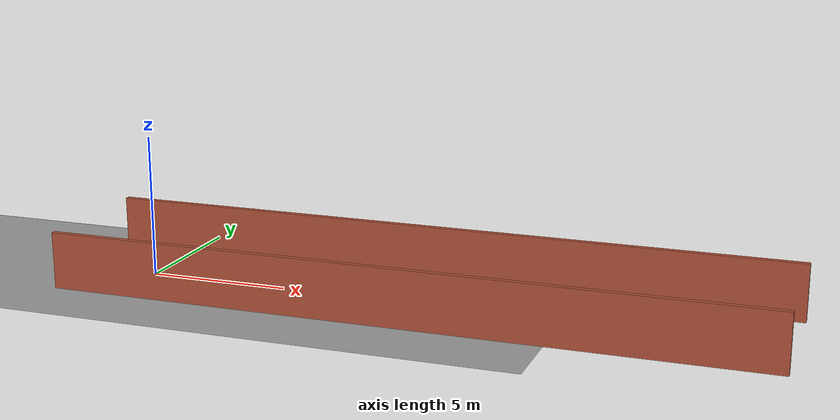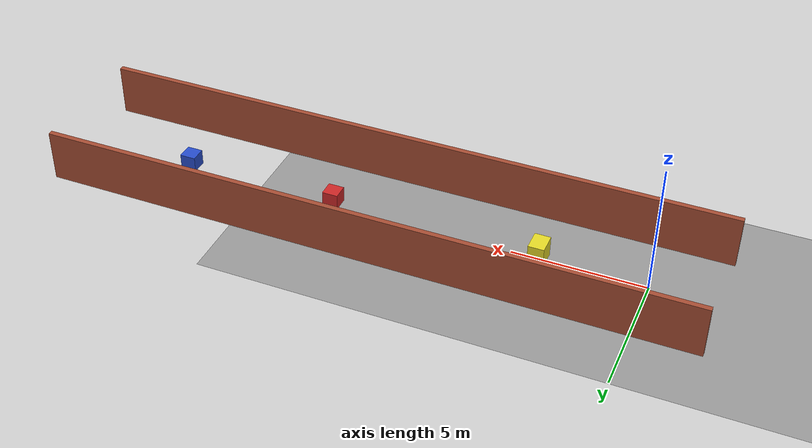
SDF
<?xml version="1.0" ?>
<sdf version="1.6">
  <world name="industrial_corridor">
    <include>
      <uri>model://sun</uri>
    </include>

    <plugin name="gazebo_ros_state" filename="libgazebo_ros_state.so">
      <ros><namespace>/gazebo</namespace></ros>
      <update_rate>50.0</update_rate>
    </plugin>

    <model name="floor">
      <static>true</static>
      <link name="link">
        <collision name="collision">
          <geometry><plane><normal>0 0 1</normal><size>30 10</size></plane></geometry>
        </collision>
        <visual name="visual">
          <geometry><plane><normal>0 0 1</normal><size>30 10</size></plane></geometry>
          <material>
            <script>
              <uri>file://media/materials/scripts/gazebo.material</uri>
              <name>Gazebo/Grey</name>
            </script>
          </material>
        </visual>
      </link>
    </model>

    <model name="wall_left">
      <pose>10.0 2.5 1.0 0 0 0</pose>
      <static>true</static>
      <link name="link">
        <collision name="collision"><geometry><box><size>25.0 0.2 2.0</size></box></geometry></collision>
        <visual name="visual">
          <geometry><box><size>25.0 0.2 2.0</size></box></geometry>
          <material>
            <script><uri>file://media/materials/scripts/gazebo.material</uri><name>Gazebo/Bricks</name></script>
          </material>
        </visual>
      </link>
    </model>

    <model name="wall_right">
      <pose>10.0 -2.5 1.0 0 0 0</pose>
      <static>true</static>
      <link name="link">
        <collision name="collision"><geometry><box><size>25.0 0.2 2.0</size></box></geometry></collision>
        <visual name="visual">
          <geometry><box><size>25.0 0.2 2.0</size></box></geometry>
          <material>
            <script><uri>file://media/materials/scripts/gazebo.material</uri><name>Gazebo/Bricks</name></script>
          </material>
        </visual>
      </link>
    </model>

    <model name='obstacle_safe'>
      <pose>4.0 0.0 0.4 0 0 0</pose>
      <static>1</static>
      <link name='link'>
        <collision name='collision'><geometry><box><size>0.6 0.8 0.8</size></box></geometry></collision>
        <visual name='visual'>
          <geometry><box><size>0.6 0.8 0.8</size></box></geometry>
          <material>
            <script><uri>file://media/materials/scripts/gazebo.material</uri><name>Gazebo/Yellow</name></script>
          </material>
        </visual>
      </link>
    </model>

    <model name='obstacle_danger'>
      <pose>12.0 0.0 0.4 0 0 0</pose>
      <static>0</static>
      <link name='link'>
        <inertial>
          <mass>1.0</mass>
          <inertia><ixx>0.1</ixx><ixy>0</ixy><ixz>0</ixz><iyy>0.1</iyy><iyz>0</iyz><izz>0.1</izz></inertia>
        </inertial>
        <collision name='collision'><geometry><box><size>0.6 0.6 0.6</size></box></geometry></collision>
        <visual name='visual'>
          <geometry><box><size>0.6 0.6 0.6</size></box></geometry>
          <material>
            <script><uri>file://media/materials/scripts/gazebo.material</uri><name>Gazebo/RedBright</name></script>
          </material>
        </visual>
      </link>
      <plugin name="object_controller" filename="libgazebo_ros_planar_move.so">
        <ros>
          <argument>cmd_vel:=actor_cmd_vel</argument>
          <argument>odom:=actor_odom</argument>
        </ros>
        <command_topic>actor_cmd_vel</command_topic>
        <odometry_topic>actor_odom</odometry_topic>
        <odometry_frame>odom</odometry_frame>
        <odometry_rate>20.0</odometry_rate>
        <robot_base_frame>link</robot_base_frame>
      </plugin>
    </model>

    <model name='obstacle_blue'>
      <pose>18.0 0.0 0.4 0 0 0</pose>
      <static>0</static>
      <link name='link'>
        <inertial><mass>1.0</mass><inertia><ixx>0.1</ixx><ixy>0</ixy><ixz>0</ixz><iyy>0.1</iyy><iyz>0</iyz><izz>0.1</izz></inertia></inertial>
        <collision name='collision'><geometry><box><size>0.6 0.6 0.6</size></box></geometry></collision>
        <visual name='visual'><geometry><box><size>0.6 0.6 0.6</size></box></geometry><material><script><uri>file://media/materials/scripts/gazebo.material</uri><name>Gazebo/Blue</name></script></material></visual>
      </link>
      <plugin name="blue_controller" filename="libgazebo_ros_planar_move.so">
        <ros><argument>cmd_vel:=blue_cmd_vel</argument><argument>odom:=blue_odom</argument></ros>
        <command_topic>blue_cmd_vel</command_topic><odometry_topic>blue_odom</odometry_topic>
        <odometry_frame>odom</odometry_frame><odometry_rate>20.0</odometry_rate><robot_base_frame>link</robot_base_frame>
      </plugin>
    </model>
  </world>
</sdf>
